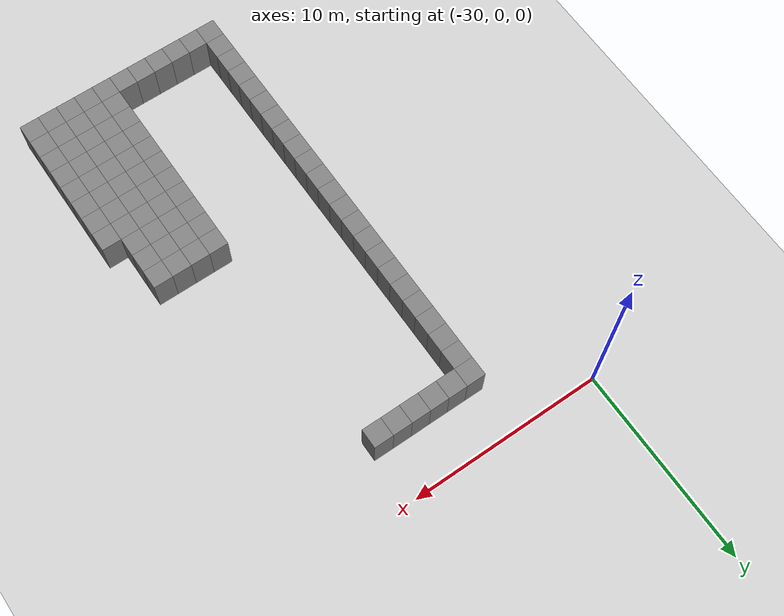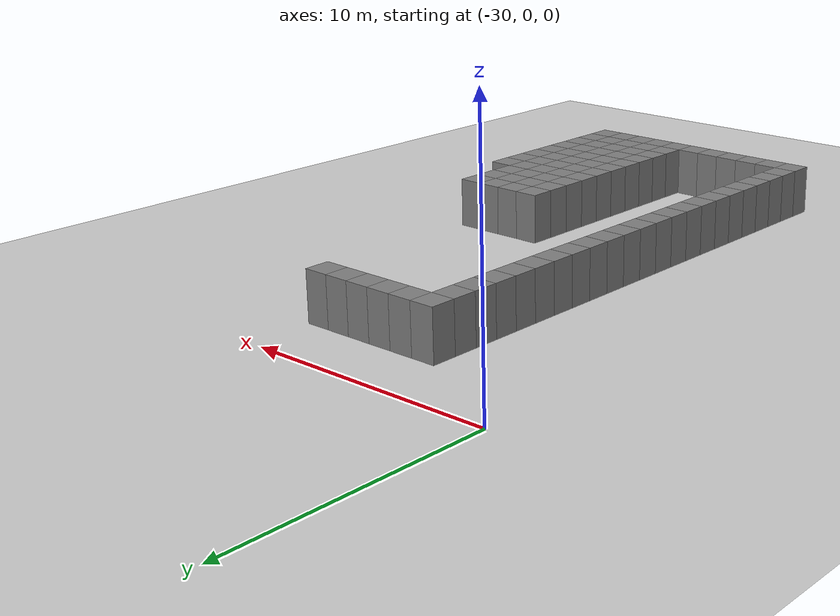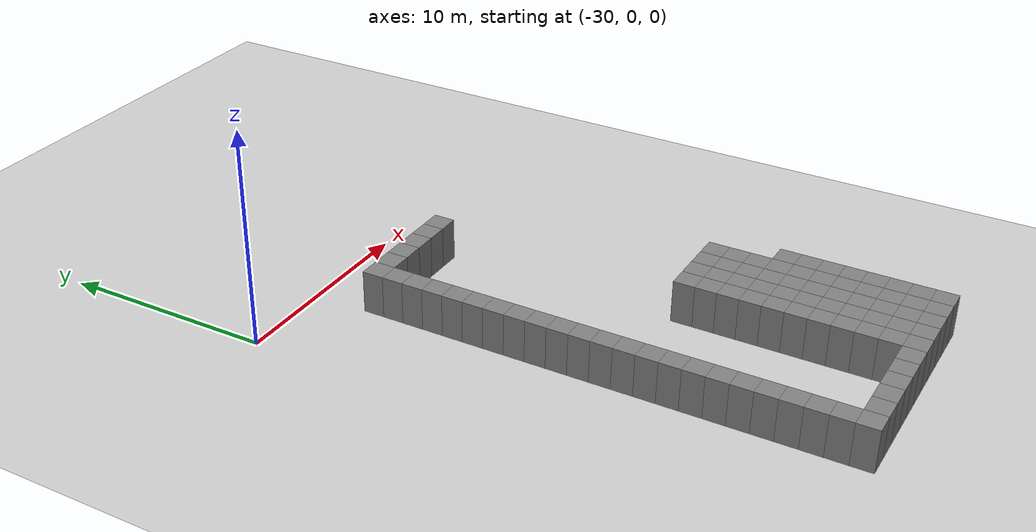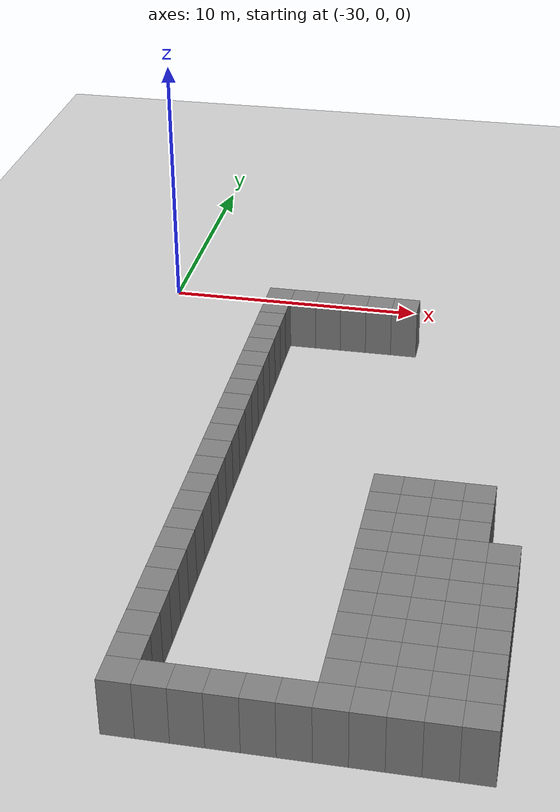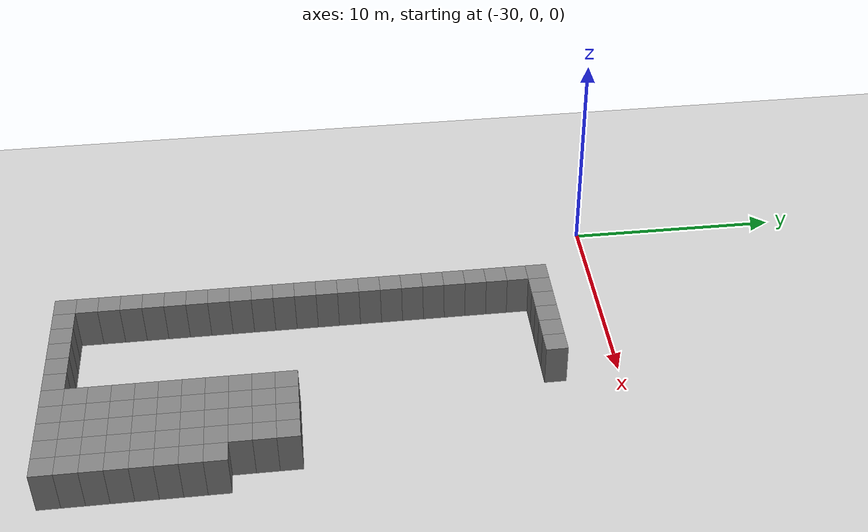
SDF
<sdf version="1.9">
 <world name="grid_world">
  <model name="ground_plane">
   <static>true</static>
   <link name="link">
    <collision name="collision">
     <geometry><plane><normal>0 0 1</normal><size>100 100</size></plane></geometry>
    </collision>
    <visual name="visual">
     <geometry><plane><normal>0 0 1</normal><size>100 100</size></plane></geometry>
     <material>
      <ambient>0.8 0.8 0.8 1</ambient>
      <diffuse>0.8 0.8 0.8 1</diffuse>
      <specular>0.8 0.8 0.8 1</specular>
     </material>
    </visual>
   </link>
  </model>
  <model name="wall_0_0">
   <static>true</static>
   <pose>-25 -25 1 0 0 0</pose>
   <link name="link">
    <collision name="collision"><geometry><box><size>1 1 2</size></box></geometry></collision>
    <visual name="visual">
     <geometry><box><size>1 1 2</size></box></geometry>
     <material>
      <ambient>0.5 0.5 0.5 1</ambient>
      <diffuse>0.5 0.5 0.5 1</diffuse>
      <specular>0.5 0.5 0.5 1</specular>
     </material>
    </visual>
   </link>
  </model>
  <model name="wall_0_1">
   <static>true</static>
   <pose>-24 -25 1 0 0 0</pose>
   <link name="link">
    <collision name="collision"><geometry><box><size>1 1 2</size></box></geometry></collision>
    <visual name="visual">
     <geometry><box><size>1 1 2</size></box></geometry>
     <material>
      <ambient>0.5 0.5 0.5 1</ambient>
      <diffuse>0.5 0.5 0.5 1</diffuse>
      <specular>0.5 0.5 0.5 1</specular>
     </material>
    </visual>
   </link>
  </model>
  <model name="wall_0_2">
   <static>true</static>
   <pose>-23 -25 1 0 0 0</pose>
   <link name="link">
    <collision name="collision"><geometry><box><size>1 1 2</size></box></geometry></collision>
    <visual name="visual">
     <geometry><box><size>1 1 2</size></box></geometry>
     <material>
      <ambient>0.5 0.5 0.5 1</ambient>
      <diffuse>0.5 0.5 0.5 1</diffuse>
      <specular>0.5 0.5 0.5 1</specular>
     </material>
    </visual>
   </link>
  </model>
  <model name="wall_0_3">
   <static>true</static>
   <pose>-22 -25 1 0 0 0</pose>
   <link name="link">
    <collision name="collision"><geometry><box><size>1 1 2</size></box></geometry></collision>
    <visual name="visual">
     <geometry><box><size>1 1 2</size></box></geometry>
     <material>
      <ambient>0.5 0.5 0.5 1</ambient>
      <diffuse>0.5 0.5 0.5 1</diffuse>
      <specular>0.5 0.5 0.5 1</specular>
     </material>
    </visual>
   </link>
  </model>
  <model name="wall_0_4">
   <static>true</static>
   <pose>-21 -25 1 0 0 0</pose>
   <link name="link">
    <collision name="collision"><geometry><box><size>1 1 2</size></box></geometry></collision>
    <visual name="visual">
     <geometry><box><size>1 1 2</size></box></geometry>
     <material>
      <ambient>0.5 0.5 0.5 1</ambient>
      <diffuse>0.5 0.5 0.5 1</diffuse>
      <specular>0.5 0.5 0.5 1</specular>
     </material>
    </visual>
   </link>
  </model>
  <model name="wall_0_5">
   <static>true</static>
   <pose>-20 -25 1 0 0 0</pose>
   <link name="link">
    <collision name="collision"><geometry><box><size>1 1 2</size></box></geometry></collision>
    <visual name="visual">
     <geometry><box><size>1 1 2</size></box></geometry>
     <material>
      <ambient>0.5 0.5 0.5 1</ambient>
      <diffuse>0.5 0.5 0.5 1</diffuse>
      <specular>0.5 0.5 0.5 1</specular>
     </material>
    </visual>
   </link>
  </model>
  <model name="wall_0_6">
   <static>true</static>
   <pose>-19 -25 1 0 0 0</pose>
   <link name="link">
    <collision name="collision"><geometry><box><size>1 1 2</size></box></geometry></collision>
    <visual name="visual">
     <geometry><box><size>1 1 2</size></box></geometry>
     <material>
      <ambient>0.5 0.5 0.5 1</ambient>
      <diffuse>0.5 0.5 0.5 1</diffuse>
      <specular>0.5 0.5 0.5 1</specular>
     </material>
    </visual>
   </link>
  </model>
  <model name="wall_0_7">
   <static>true</static>
   <pose>-18 -25 1 0 0 0</pose>
   <link name="link">
    <collision name="collision"><geometry><box><size>1 1 2</size></box></geometry></collision>
    <visual name="visual">
     <geometry><box><size>1 1 2</size></box></geometry>
     <material>
      <ambient>0.5 0.5 0.5 1</ambient>
      <diffuse>0.5 0.5 0.5 1</diffuse>
      <specular>0.5 0.5 0.5 1</specular>
     </material>
    </visual>
   </link>
  </model>
  <model name="wall_0_8">
   <static>true</static>
   <pose>-17 -25 1 0 0 0</pose>
   <link name="link">
    <collision name="collision"><geometry><box><size>1 1 2</size></box></geometry></collision>
    <visual name="visual">
     <geometry><box><size>1 1 2</size></box></geometry>
     <material>
      <ambient>0.5 0.5 0.5 1</ambient>
      <diffuse>0.5 0.5 0.5 1</diffuse>
      <specular>0.5 0.5 0.5 1</specular>
     </material>
    </visual>
   </link>
  </model>
  <model name="wall_0_9">
   <static>true</static>
   <pose>-16 -25 1 0 0 0</pose>
   <link name="link">
    <collision name="collision"><geometry><box><size>1 1 2</size></box></geometry></collision>
    <visual name="visual">
     <geometry><box><size>1 1 2</size></box></geometry>
     <material>
      <ambient>0.5 0.5 0.5 1</ambient>
      <diffuse>0.5 0.5 0.5 1</diffuse>
      <specular>0.5 0.5 0.5 1</specular>
     </material>
    </visual>
   </link>
  </model>
  <model name="wall_0_10">
   <static>true</static>
   <pose>-15 -25 1 0 0 0</pose>
   <link name="link">
    <collision name="collision"><geometry><box><size>1 1 2</size></box></geometry></collision>
    <visual name="visual">
     <geometry><box><size>1 1 2</size></box></geometry>
     <material>
      <ambient>0.5 0.5 0.5 1</ambient>
      <diffuse>0.5 0.5 0.5 1</diffuse>
      <specular>0.5 0.5 0.5 1</specular>
     </material>
    </visual>
   </link>
  </model>
  <model name="wall_1_0">
   <static>true</static>
   <pose>-25 -24 1 0 0 0</pose>
   <link name="link">
    <collision name="collision"><geometry><box><size>1 1 2</size></box></geometry></collision>
    <visual name="visual">
     <geometry><box><size>1 1 2</size></box></geometry>
     <material>
      <ambient>0.5 0.5 0.5 1</ambient>
      <diffuse>0.5 0.5 0.5 1</diffuse>
      <specular>0.5 0.5 0.5 1</specular>
     </material>
    </visual>
   </link>
  </model>
  <model name="wall_1_6">
   <static>true</static>
   <pose>-19 -24 1 0 0 0</pose>
   <link name="link">
    <collision name="collision"><geometry><box><size>1 1 2</size></box></geometry></collision>
    <visual name="visual">
     <geometry><box><size>1 1 2</size></box></geometry>
     <material>
      <ambient>0.5 0.5 0.5 1</ambient>
      <diffuse>0.5 0.5 0.5 1</diffuse>
      <specular>0.5 0.5 0.5 1</specular>
     </material>
    </visual>
   </link>
  </model>
  <model name="wall_1_7">
   <static>true</static>
   <pose>-18 -24 1 0 0 0</pose>
   <link name="link">
    <collision name="collision"><geometry><box><size>1 1 2</size></box></geometry></collision>
    <visual name="visual">
     <geometry><box><size>1 1 2</size></box></geometry>
     <material>
      <ambient>0.5 0.5 0.5 1</ambient>
      <diffuse>0.5 0.5 0.5 1</diffuse>
      <specular>0.5 0.5 0.5 1</specular>
     </material>
    </visual>
   </link>
  </model>
  <model name="wall_1_8">
   <static>true</static>
   <pose>-17 -24 1 0 0 0</pose>
   <link name="link">
    <collision name="collision"><geometry><box><size>1 1 2</size></box></geometry></collision>
    <visual name="visual">
     <geometry><box><size>1 1 2</size></box></geometry>
     <material>
      <ambient>0.5 0.5 0.5 1</ambient>
      <diffuse>0.5 0.5 0.5 1</diffuse>
      <specular>0.5 0.5 0.5 1</specular>
     </material>
    </visual>
   </link>
  </model>
  <model name="wall_1_9">
   <static>true</static>
   <pose>-16 -24 1 0 0 0</pose>
   <link name="link">
    <collision name="collision"><geometry><box><size>1 1 2</size></box></geometry></collision>
    <visual name="visual">
     <geometry><box><size>1 1 2</size></box></geometry>
     <material>
      <ambient>0.5 0.5 0.5 1</ambient>
      <diffuse>0.5 0.5 0.5 1</diffuse>
      <specular>0.5 0.5 0.5 1</specular>
     </material>
    </visual>
   </link>
  </model>
  <model name="wall_1_10">
   <static>true</static>
   <pose>-15 -24 1 0 0 0</pose>
   <link name="link">
    <collision name="collision"><geometry><box><size>1 1 2</size></box></geometry></collision>
    <visual name="visual">
     <geometry><box><size>1 1 2</size></box></geometry>
     <material>
      <ambient>0.5 0.5 0.5 1</ambient>
      <diffuse>0.5 0.5 0.5 1</diffuse>
      <specular>0.5 0.5 0.5 1</specular>
     </material>
    </visual>
   </link>
  </model>
  <model name="wall_2_0">
   <static>true</static>
   <pose>-25 -23 1 0 0 0</pose>
   <link name="link">
    <collision name="collision"><geometry><box><size>1 1 2</size></box></geometry></collision>
    <visual name="visual">
     <geometry><box><size>1 1 2</size></box></geometry>
     <material>
      <ambient>0.5 0.5 0.5 1</ambient>
      <diffuse>0.5 0.5 0.5 1</diffuse>
      <specular>0.5 0.5 0.5 1</specular>
     </material>
    </visual>
   </link>
  </model>
  <model name="wall_2_6">
   <static>true</static>
   <pose>-19 -23 1 0 0 0</pose>
   <link name="link">
    <collision name="collision"><geometry><box><size>1 1 2</size></box></geometry></collision>
    <visual name="visual">
     <geometry><box><size>1 1 2</size></box></geometry>
     <material>
      <ambient>0.5 0.5 0.5 1</ambient>
      <diffuse>0.5 0.5 0.5 1</diffuse>
      <specular>0.5 0.5 0.5 1</specular>
     </material>
    </visual>
   </link>
  </model>
  <model name="wall_2_7">
   <static>true</static>
   <pose>-18 -23 1 0 0 0</pose>
   <link name="link">
    <collision name="collision"><geometry><box><size>1 1 2</size></box></geometry></collision>
    <visual name="visual">
     <geometry><box><size>1 1 2</size></box></geometry>
     <material>
      <ambient>0.5 0.5 0.5 1</ambient>
      <diffuse>0.5 0.5 0.5 1</diffuse>
      <specular>0.5 0.5 0.5 1</specular>
     </material>
    </visual>
   </link>
  </model>
  <model name="wall_2_8">
   <static>true</static>
   <pose>-17 -23 1 0 0 0</pose>
   <link name="link">
    <collision name="collision"><geometry><box><size>1 1 2</size></box></geometry></collision>
    <visual name="visual">
     <geometry><box><size>1 1 2</size></box></geometry>
     <material>
      <ambient>0.5 0.5 0.5 1</ambient>
      <diffuse>0.5 0.5 0.5 1</diffuse>
      <specular>0.5 0.5 0.5 1</specular>
     </material>
    </visual>
   </link>
  </model>
  <model name="wall_2_9">
   <static>true</static>
   <pose>-16 -23 1 0 0 0</pose>
   <link name="link">
    <collision name="collision"><geometry><box><size>1 1 2</size></box></geometry></collision>
    <visual name="visual">
     <geometry><box><size>1 1 2</size></box></geometry>
     <material>
      <ambient>0.5 0.5 0.5 1</ambient>
      <diffuse>0.5 0.5 0.5 1</diffuse>
      <specular>0.5 0.5 0.5 1</specular>
     </material>
    </visual>
   </link>
  </model>
  <model name="wall_2_10">
   <static>true</static>
   <pose>-15 -23 1 0 0 0</pose>
   <link name="link">
    <collision name="collision"><geometry><box><size>1 1 2</size></box></geometry></collision>
    <visual name="visual">
     <geometry><box><size>1 1 2</size></box></geometry>
     <material>
      <ambient>0.5 0.5 0.5 1</ambient>
      <diffuse>0.5 0.5 0.5 1</diffuse>
      <specular>0.5 0.5 0.5 1</specular>
     </material>
    </visual>
   </link>
  </model>
  <model name="wall_3_0">
   <static>true</static>
   <pose>-25 -22 1 0 0 0</pose>
   <link name="link">
    <collision name="collision"><geometry><box><size>1 1 2</size></box></geometry></collision>
    <visual name="visual">
     <geometry><box><size>1 1 2</size></box></geometry>
     <material>
      <ambient>0.5 0.5 0.5 1</ambient>
      <diffuse>0.5 0.5 0.5 1</diffuse>
      <specular>0.5 0.5 0.5 1</specular>
     </material>
    </visual>
   </link>
  </model>
  <model name="wall_3_6">
   <static>true</static>
   <pose>-19 -22 1 0 0 0</pose>
   <link name="link">
    <collision name="collision"><geometry><box><size>1 1 2</size></box></geometry></collision>
    <visual name="visual">
     <geometry><box><size>1 1 2</size></box></geometry>
     <material>
      <ambient>0.5 0.5 0.5 1</ambient>
      <diffuse>0.5 0.5 0.5 1</diffuse>
      <specular>0.5 0.5 0.5 1</specular>
     </material>
    </visual>
   </link>
  </model>
  <model name="wall_3_7">
   <static>true</static>
   <pose>-18 -22 1 0 0 0</pose>
   <link name="link">
    <collision name="collision"><geometry><box><size>1 1 2</size></box></geometry></collision>
    <visual name="visual">
     <geometry><box><size>1 1 2</size></box></geometry>
     <material>
      <ambient>0.5 0.5 0.5 1</ambient>
      <diffuse>0.5 0.5 0.5 1</diffuse>
      <specular>0.5 0.5 0.5 1</specular>
     </material>
    </visual>
   </link>
  </model>
  <model name="wall_3_8">
   <static>true</static>
   <pose>-17 -22 1 0 0 0</pose>
   <link name="link">
    <collision name="collision"><geometry><box><size>1 1 2</size></box></geometry></collision>
    <visual name="visual">
     <geometry><box><size>1 1 2</size></box></geometry>
     <material>
      <ambient>0.5 0.5 0.5 1</ambient>
      <diffuse>0.5 0.5 0.5 1</diffuse>
      <specular>0.5 0.5 0.5 1</specular>
     </material>
    </visual>
   </link>
  </model>
  <model name="wall_3_9">
   <static>true</static>
   <pose>-16 -22 1 0 0 0</pose>
   <link name="link">
    <collision name="collision"><geometry><box><size>1 1 2</size></box></geometry></collision>
    <visual name="visual">
     <geometry><box><size>1 1 2</size></box></geometry>
     <material>
      <ambient>0.5 0.5 0.5 1</ambient>
      <diffuse>0.5 0.5 0.5 1</diffuse>
      <specular>0.5 0.5 0.5 1</specular>
     </material>
    </visual>
   </link>
  </model>
  <model name="wall_3_10">
   <static>true</static>
   <pose>-15 -22 1 0 0 0</pose>
   <link name="link">
    <collision name="collision"><geometry><box><size>1 1 2</size></box></geometry></collision>
    <visual name="visual">
     <geometry><box><size>1 1 2</size></box></geometry>
     <material>
      <ambient>0.5 0.5 0.5 1</ambient>
      <diffuse>0.5 0.5 0.5 1</diffuse>
      <specular>0.5 0.5 0.5 1</specular>
     </material>
    </visual>
   </link>
  </model>
  <model name="wall_4_0">
   <static>true</static>
   <pose>-25 -21 1 0 0 0</pose>
   <link name="link">
    <collision name="collision"><geometry><box><size>1 1 2</size></box></geometry></collision>
    <visual name="visual">
     <geometry><box><size>1 1 2</size></box></geometry>
     <material>
      <ambient>0.5 0.5 0.5 1</ambient>
      <diffuse>0.5 0.5 0.5 1</diffuse>
      <specular>0.5 0.5 0.5 1</specular>
     </material>
    </visual>
   </link>
  </model>
  <model name="wall_4_6">
   <static>true</static>
   <pose>-19 -21 1 0 0 0</pose>
   <link name="link">
    <collision name="collision"><geometry><box><size>1 1 2</size></box></geometry></collision>
    <visual name="visual">
     <geometry><box><size>1 1 2</size></box></geometry>
     <material>
      <ambient>0.5 0.5 0.5 1</ambient>
      <diffuse>0.5 0.5 0.5 1</diffuse>
      <specular>0.5 0.5 0.5 1</specular>
     </material>
    </visual>
   </link>
  </model>
  <model name="wall_4_7">
   <static>true</static>
   <pose>-18 -21 1 0 0 0</pose>
   <link name="link">
    <collision name="collision"><geometry><box><size>1 1 2</size></box></geometry></collision>
    <visual name="visual">
     <geometry><box><size>1 1 2</size></box></geometry>
     <material>
      <ambient>0.5 0.5 0.5 1</ambient>
      <diffuse>0.5 0.5 0.5 1</diffuse>
      <specular>0.5 0.5 0.5 1</specular>
     </material>
    </visual>
   </link>
  </model>
  <model name="wall_4_8">
   <static>true</static>
   <pose>-17 -21 1 0 0 0</pose>
   <link name="link">
    <collision name="collision"><geometry><box><size>1 1 2</size></box></geometry></collision>
    <visual name="visual">
     <geometry><box><size>1 1 2</size></box></geometry>
     <material>
      <ambient>0.5 0.5 0.5 1</ambient>
      <diffuse>0.5 0.5 0.5 1</diffuse>
      <specular>0.5 0.5 0.5 1</specular>
     </material>
    </visual>
   </link>
  </model>
  <model name="wall_4_9">
   <static>true</static>
   <pose>-16 -21 1 0 0 0</pose>
   <link name="link">
    <collision name="collision"><geometry><box><size>1 1 2</size></box></geometry></collision>
    <visual name="visual">
     <geometry><box><size>1 1 2</size></box></geometry>
     <material>
      <ambient>0.5 0.5 0.5 1</ambient>
      <diffuse>0.5 0.5 0.5 1</diffuse>
      <specular>0.5 0.5 0.5 1</specular>
     </material>
    </visual>
   </link>
  </model>
  <model name="wall_4_10">
   <static>true</static>
   <pose>-15 -21 1 0 0 0</pose>
   <link name="link">
    <collision name="collision"><geometry><box><size>1 1 2</size></box></geometry></collision>
    <visual name="visual">
     <geometry><box><size>1 1 2</size></box></geometry>
     <material>
      <ambient>0.5 0.5 0.5 1</ambient>
      <diffuse>0.5 0.5 0.5 1</diffuse>
      <specular>0.5 0.5 0.5 1</specular>
     </material>
    </visual>
   </link>
  </model>
  <model name="wall_5_0">
   <static>true</static>
   <pose>-25 -20 1 0 0 0</pose>
   <link name="link">
    <collision name="collision"><geometry><box><size>1 1 2</size></box></geometry></collision>
    <visual name="visual">
     <geometry><box><size>1 1 2</size></box></geometry>
     <material>
      <ambient>0.5 0.5 0.5 1</ambient>
      <diffuse>0.5 0.5 0.5 1</diffuse>
      <specular>0.5 0.5 0.5 1</specular>
     </material>
    </visual>
   </link>
  </model>
  <model name="wall_5_6">
   <static>true</static>
   <pose>-19 -20 1 0 0 0</pose>
   <link name="link">
    <collision name="collision"><geometry><box><size>1 1 2</size></box></geometry></collision>
    <visual name="visual">
     <geometry><box><size>1 1 2</size></box></geometry>
     <material>
      <ambient>0.5 0.5 0.5 1</ambient>
      <diffuse>0.5 0.5 0.5 1</diffuse>
      <specular>0.5 0.5 0.5 1</specular>
     </material>
    </visual>
   </link>
  </model>
  <model name="wall_5_7">
   <static>true</static>
   <pose>-18 -20 1 0 0 0</pose>
   <link name="link">
    <collision name="collision"><geometry><box><size>1 1 2</size></box></geometry></collision>
    <visual name="visual">
     <geometry><box><size>1 1 2</size></box></geometry>
     <material>
      <ambient>0.5 0.5 0.5 1</ambient>
      <diffuse>0.5 0.5 0.5 1</diffuse>
      <specular>0.5 0.5 0.5 1</specular>
     </material>
    </visual>
   </link>
  </model>
  <model name="wall_5_8">
   <static>true</static>
   <pose>-17 -20 1 0 0 0</pose>
   <link name="link">
    <collision name="collision"><geometry><box><size>1 1 2</size></box></geometry></collision>
    <visual name="visual">
     <geometry><box><size>1 1 2</size></box></geometry>
     <material>
      <ambient>0.5 0.5 0.5 1</ambient>
      <diffuse>0.5 0.5 0.5 1</diffuse>
      <specular>0.5 0.5 0.5 1</specular>
     </material>
    </visual>
   </link>
  </model>
  <model name="wall_5_9">
   <static>true</static>
   <pose>-16 -20 1 0 0 0</pose>
   <link name="link">
    <collision name="collision"><geometry><box><size>1 1 2</size></box></geometry></collision>
    <visual name="visual">
     <geometry><box><size>1 1 2</size></box></geometry>
     <material>
      <ambient>0.5 0.5 0.5 1</ambient>
      <diffuse>0.5 0.5 0.5 1</diffuse>
      <specular>0.5 0.5 0.5 1</specular>
     </material>
    </visual>
   </link>
  </model>
  <model name="wall_5_10">
   <static>true</static>
   <pose>-15 -20 1 0 0 0</pose>
   <link name="link">
    <collision name="collision"><geometry><box><size>1 1 2</size></box></geometry></collision>
    <visual name="visual">
     <geometry><box><size>1 1 2</size></box></geometry>
     <material>
      <ambient>0.5 0.5 0.5 1</ambient>
      <diffuse>0.5 0.5 0.5 1</diffuse>
      <specular>0.5 0.5 0.5 1</specular>
     </material>
    </visual>
   </link>
  </model>
  <model name="wall_6_0">
   <static>true</static>
   <pose>-25 -19 1 0 0 0</pose>
   <link name="link">
    <collision name="collision"><geometry><box><size>1 1 2</size></box></geometry></collision>
    <visual name="visual">
     <geometry><box><size>1 1 2</size></box></geometry>
     <material>
      <ambient>0.5 0.5 0.5 1</ambient>
      <diffuse>0.5 0.5 0.5 1</diffuse>
      <specular>0.5 0.5 0.5 1</specular>
     </material>
    </visual>
   </link>
  </model>
  <model name="wall_6_6">
   <static>true</static>
   <pose>-19 -19 1 0 0 0</pose>
   <link name="link">
    <collision name="collision"><geometry><box><size>1 1 2</size></box></geometry></collision>
    <visual name="visual">
     <geometry><box><size>1 1 2</size></box></geometry>
     <material>
      <ambient>0.5 0.5 0.5 1</ambient>
      <diffuse>0.5 0.5 0.5 1</diffuse>
      <specular>0.5 0.5 0.5 1</specular>
     </material>
    </visual>
   </link>
  </model>
  <model name="wall_6_7">
   <static>true</static>
   <pose>-18 -19 1 0 0 0</pose>
   <link name="link">
    <collision name="collision"><geometry><box><size>1 1 2</size></box></geometry></collision>
    <visual name="visual">
     <geometry><box><size>1 1 2</size></box></geometry>
     <material>
      <ambient>0.5 0.5 0.5 1</ambient>
      <diffuse>0.5 0.5 0.5 1</diffuse>
      <specular>0.5 0.5 0.5 1</specular>
     </material>
    </visual>
   </link>
  </model>
  <model name="wall_6_8">
   <static>true</static>
   <pose>-17 -19 1 0 0 0</pose>
   <link name="link">
    <collision name="collision"><geometry><box><size>1 1 2</size></box></geometry></collision>
    <visual name="visual">
     <geometry><box><size>1 1 2</size></box></geometry>
     <material>
      <ambient>0.5 0.5 0.5 1</ambient>
      <diffuse>0.5 0.5 0.5 1</diffuse>
      <specular>0.5 0.5 0.5 1</specular>
     </material>
    </visual>
   </link>
  </model>
  <model name="wall_6_9">
   <static>true</static>
   <pose>-16 -19 1 0 0 0</pose>
   <link name="link">
    <collision name="collision"><geometry><box><size>1 1 2</size></box></geometry></collision>
    <visual name="visual">
     <geometry><box><size>1 1 2</size></box></geometry>
     <material>
      <ambient>0.5 0.5 0.5 1</ambient>
      <diffuse>0.5 0.5 0.5 1</diffuse>
      <specular>0.5 0.5 0.5 1</specular>
     </material>
    </visual>
   </link>
  </model>
  <model name="wall_6_10">
   <static>true</static>
   <pose>-15 -19 1 0 0 0</pose>
   <link name="link">
    <collision name="collision"><geometry><box><size>1 1 2</size></box></geometry></collision>
    <visual name="visual">
     <geometry><box><size>1 1 2</size></box></geometry>
     <material>
      <ambient>0.5 0.5 0.5 1</ambient>
      <diffuse>0.5 0.5 0.5 1</diffuse>
      <specular>0.5 0.5 0.5 1</specular>
     </material>
    </visual>
   </link>
  </model>
  <model name="wall_7_0">
   <static>true</static>
   <pose>-25 -18 1 0 0 0</pose>
   <link name="link">
    <collision name="collision"><geometry><box><size>1 1 2</size></box></geometry></collision>
    <visual name="visual">
     <geometry><box><size>1 1 2</size></box></geometry>
     <material>
      <ambient>0.5 0.5 0.5 1</ambient>
      <diffuse>0.5 0.5 0.5 1</diffuse>
      <specular>0.5 0.5 0.5 1</specular>
     </material>
    </visual>
   </link>
  </model>
  <model name="wall_7_6">
   <static>true</static>
   <pose>-19 -18 1 0 0 0</pose>
   <link name="link">
    <collision name="collision"><geometry><box><size>1 1 2</size></box></geometry></collision>
    <visual name="visual">
     <geometry><box><size>1 1 2</size></box></geometry>
     <material>
      <ambient>0.5 0.5 0.5 1</ambient>
      <diffuse>0.5 0.5 0.5 1</diffuse>
      <specular>0.5 0.5 0.5 1</specular>
     </material>
    </visual>
   </link>
  </model>
  <model name="wall_7_7">
   <static>true</static>
   <pose>-18 -18 1 0 0 0</pose>
   <link name="link">
    <collision name="collision"><geometry><box><size>1 1 2</size></box></geometry></collision>
    <visual name="visual">
     <geometry><box><size>1 1 2</size></box></geometry>
     <material>
      <ambient>0.5 0.5 0.5 1</ambient>
      <diffuse>0.5 0.5 0.5 1</diffuse>
      <specular>0.5 0.5 0.5 1</specular>
     </material>
    </visual>
   </link>
  </model>
  <model name="wall_7_8">
   <static>true</static>
   <pose>-17 -18 1 0 0 0</pose>
   <link name="link">
    <collision name="collision"><geometry><box><size>1 1 2</size></box></geometry></collision>
    <visual name="visual">
     <geometry><box><size>1 1 2</size></box></geometry>
     <material>
      <ambient>0.5 0.5 0.5 1</ambient>
      <diffuse>0.5 0.5 0.5 1</diffuse>
      <specular>0.5 0.5 0.5 1</specular>
     </material>
    </visual>
   </link>
  </model>
  <model name="wall_7_9">
   <static>true</static>
   <pose>-16 -18 1 0 0 0</pose>
   <link name="link">
    <collision name="collision"><geometry><box><size>1 1 2</size></box></geometry></collision>
    <visual name="visual">
     <geometry><box><size>1 1 2</size></box></geometry>
     <material>
      <ambient>0.5 0.5 0.5 1</ambient>
      <diffuse>0.5 0.5 0.5 1</diffuse>
      <specular>0.5 0.5 0.5 1</specular>
     </material>
    </visual>
   </link>
  </model>
  <model name="wall_7_10">
   <static>true</static>
   <pose>-15 -18 1 0 0 0</pose>
   <link name="link">
    <collision name="collision"><geometry><box><size>1 1 2</size></box></geometry></collision>
    <visual name="visual">
     <geometry><box><size>1 1 2</size></box></geometry>
     <material>
      <ambient>0.5 0.5 0.5 1</ambient>
      <diffuse>0.5 0.5 0.5 1</diffuse>
      <specular>0.5 0.5 0.5 1</specular>
     </material>
    </visual>
   </link>
  </model>
  <model name="wall_8_0">
   <static>true</static>
   <pose>-25 -17 1 0 0 0</pose>
   <link name="link">
    <collision name="collision"><geometry><box><size>1 1 2</size></box></geometry></collision>
    <visual name="visual">
     <geometry><box><size>1 1 2</size></box></geometry>
     <material>
      <ambient>0.5 0.5 0.5 1</ambient>
      <diffuse>0.5 0.5 0.5 1</diffuse>
      <specular>0.5 0.5 0.5 1</specular>
     </material>
    </visual>
   </link>
  </model>
  <model name="wall_8_6">
   <static>true</static>
   <pose>-19 -17 1 0 0 0</pose>
   <link name="link">
    <collision name="collision"><geometry><box><size>1 1 2</size></box></geometry></collision>
    <visual name="visual">
     <geometry><box><size>1 1 2</size></box></geometry>
     <material>
      <ambient>0.5 0.5 0.5 1</ambient>
      <diffuse>0.5 0.5 0.5 1</diffuse>
      <specular>0.5 0.5 0.5 1</specular>
     </material>
    </visual>
   </link>
  </model>
  <model name="wall_8_7">
   <static>true</static>
   <pose>-18 -17 1 0 0 0</pose>
   <link name="link">
    <collision name="collision"><geometry><box><size>1 1 2</size></box></geometry></collision>
    <visual name="visual">
     <geometry><box><size>1 1 2</size></box></geometry>
     <material>
      <ambient>0.5 0.5 0.5 1</ambient>
      <diffuse>0.5 0.5 0.5 1</diffuse>
      <specular>0.5 0.5 0.5 1</specular>
     </material>
    </visual>
   </link>
  </model>
  <model name="wall_8_8">
   <static>true</static>
   <pose>-17 -17 1 0 0 0</pose>
   <link name="link">
    <collision name="collision"><geometry><box><size>1 1 2</size></box></geometry></collision>
    <visual name="visual">
     <geometry><box><size>1 1 2</size></box></geometry>
     <material>
      <ambient>0.5 0.5 0.5 1</ambient>
      <diffuse>0.5 0.5 0.5 1</diffuse>
      <specular>0.5 0.5 0.5 1</specular>
     </material>
    </visual>
   </link>
  </model>
  <model name="wall_8_9">
   <static>true</static>
   <pose>-16 -17 1 0 0 0</pose>
   <link name="link">
    <collision name="collision"><geometry><box><size>1 1 2</size></box></geometry></collision>
    <visual name="visual">
     <geometry><box><size>1 1 2</size></box></geometry>
     <material>
      <ambient>0.5 0.5 0.5 1</ambient>
      <diffuse>0.5 0.5 0.5 1</diffuse>
      <specular>0.5 0.5 0.5 1</specular>
     </material>
    </visual>
   </link>
  </model>
  <model name="wall_9_0">
   <static>true</static>
   <pose>-25 -16 1 0 0 0</pose>
   <link name="link">
    <collision name="collision"><geometry><box><size>1 1 2</size></box></geometry></collision>
    <visual name="visual">
     <geometry><box><size>1 1 2</size></box></geometry>
     <material>
      <ambient>0.5 0.5 0.5 1</ambient>
      <diffuse>0.5 0.5 0.5 1</diffuse>
      <specular>0.5 0.5 0.5 1</specular>
     </material>
    </visual>
   </link>
  </model>
  <model name="wall_9_6">
   <static>true</static>
   <pose>-19 -16 1 0 0 0</pose>
   <link name="link">
    <collision name="collision"><geometry><box><size>1 1 2</size></box></geometry></collision>
    <visual name="visual">
     <geometry><box><size>1 1 2</size></box></geometry>
     <material>
      <ambient>0.5 0.5 0.5 1</ambient>
      <diffuse>0.5 0.5 0.5 1</diffuse>
      <specular>0.5 0.5 0.5 1</specular>
     </material>
    </visual>
   </link>
  </model>
  <model name="wall_9_7">
   <static>true</static>
   <pose>-18 -16 1 0 0 0</pose>
   <link name="link">
    <collision name="collision"><geometry><box><size>1 1 2</size></box></geometry></collision>
    <visual name="visual">
     <geometry><box><size>1 1 2</size></box></geometry>
     <material>
      <ambient>0.5 0.5 0.5 1</ambient>
      <diffuse>0.5 0.5 0.5 1</diffuse>
      <specular>0.5 0.5 0.5 1</specular>
     </material>
    </visual>
   </link>
  </model>
  <model name="wall_9_8">
   <static>true</static>
   <pose>-17 -16 1 0 0 0</pose>
   <link name="link">
    <collision name="collision"><geometry><box><size>1 1 2</size></box></geometry></collision>
    <visual name="visual">
     <geometry><box><size>1 1 2</size></box></geometry>
     <material>
      <ambient>0.5 0.5 0.5 1</ambient>
      <diffuse>0.5 0.5 0.5 1</diffuse>
      <specular>0.5 0.5 0.5 1</specular>
     </material>
    </visual>
   </link>
  </model>
  <model name="wall_9_9">
   <static>true</static>
   <pose>-16 -16 1 0 0 0</pose>
   <link name="link">
    <collision name="collision"><geometry><box><size>1 1 2</size></box></geometry></collision>
    <visual name="visual">
     <geometry><box><size>1 1 2</size></box></geometry>
     <material>
      <ambient>0.5 0.5 0.5 1</ambient>
      <diffuse>0.5 0.5 0.5 1</diffuse>
      <specular>0.5 0.5 0.5 1</specular>
     </material>
    </visual>
   </link>
  </model>
  <model name="wall_10_0">
   <static>true</static>
   <pose>-25 -15 1 0 0 0</pose>
   <link name="link">
    <collision name="collision"><geometry><box><size>1 1 2</size></box></geometry></collision>
    <visual name="visual">
     <geometry><box><size>1 1 2</size></box></geometry>
     <material>
      <ambient>0.5 0.5 0.5 1</ambient>
      <diffuse>0.5 0.5 0.5 1</diffuse>
      <specular>0.5 0.5 0.5 1</specular>
     </material>
    </visual>
   </link>
  </model>
  <model name="wall_10_6">
   <static>true</static>
   <pose>-19 -15 1 0 0 0</pose>
   <link name="link">
    <collision name="collision"><geometry><box><size>1 1 2</size></box></geometry></collision>
    <visual name="visual">
     <geometry><box><size>1 1 2</size></box></geometry>
     <material>
      <ambient>0.5 0.5 0.5 1</ambient>
      <diffuse>0.5 0.5 0.5 1</diffuse>
      <specular>0.5 0.5 0.5 1</specular>
     </material>
    </visual>
   </link>
  </model>
  <model name="wall_10_7">
   <static>true</static>
   <pose>-18 -15 1 0 0 0</pose>
   <link name="link">
    <collision name="collision"><geometry><box><size>1 1 2</size></box></geometry></collision>
    <visual name="visual">
     <geometry><box><size>1 1 2</size></box></geometry>
     <material>
      <ambient>0.5 0.5 0.5 1</ambient>
      <diffuse>0.5 0.5 0.5 1</diffuse>
      <specular>0.5 0.5 0.5 1</specular>
     </material>
    </visual>
   </link>
  </model>
  <model name="wall_10_8">
   <static>true</static>
   <pose>-17 -15 1 0 0 0</pose>
   <link name="link">
    <collision name="collision"><geometry><box><size>1 1 2</size></box></geometry></collision>
    <visual name="visual">
     <geometry><box><size>1 1 2</size></box></geometry>
     <material>
      <ambient>0.5 0.5 0.5 1</ambient>
      <diffuse>0.5 0.5 0.5 1</diffuse>
      <specular>0.5 0.5 0.5 1</specular>
     </material>
    </visual>
   </link>
  </model>
  <model name="wall_10_9">
   <static>true</static>
   <pose>-16 -15 1 0 0 0</pose>
   <link name="link">
    <collision name="collision"><geometry><box><size>1 1 2</size></box></geometry></collision>
    <visual name="visual">
     <geometry><box><size>1 1 2</size></box></geometry>
     <material>
      <ambient>0.5 0.5 0.5 1</ambient>
      <diffuse>0.5 0.5 0.5 1</diffuse>
      <specular>0.5 0.5 0.5 1</specular>
     </material>
    </visual>
   </link>
  </model>
  <model name="wall_11_0">
   <static>true</static>
   <pose>-25 -14 1 0 0 0</pose>
   <link name="link">
    <collision name="collision"><geometry><box><size>1 1 2</size></box></geometry></collision>
    <visual name="visual">
     <geometry><box><size>1 1 2</size></box></geometry>
     <material>
      <ambient>0.5 0.5 0.5 1</ambient>
      <diffuse>0.5 0.5 0.5 1</diffuse>
      <specular>0.5 0.5 0.5 1</specular>
     </material>
    </visual>
   </link>
  </model>
  <model name="wall_12_0">
   <static>true</static>
   <pose>-25 -13 1 0 0 0</pose>
   <link name="link">
    <collision name="collision"><geometry><box><size>1 1 2</size></box></geometry></collision>
    <visual name="visual">
     <geometry><box><size>1 1 2</size></box></geometry>
     <material>
      <ambient>0.5 0.5 0.5 1</ambient>
      <diffuse>0.5 0.5 0.5 1</diffuse>
      <specular>0.5 0.5 0.5 1</specular>
     </material>
    </visual>
   </link>
  </model>
  <model name="wall_13_0">
   <static>true</static>
   <pose>-25 -12 1 0 0 0</pose>
   <link name="link">
    <collision name="collision"><geometry><box><size>1 1 2</size></box></geometry></collision>
    <visual name="visual">
     <geometry><box><size>1 1 2</size></box></geometry>
     <material>
      <ambient>0.5 0.5 0.5 1</ambient>
      <diffuse>0.5 0.5 0.5 1</diffuse>
      <specular>0.5 0.5 0.5 1</specular>
     </material>
    </visual>
   </link>
  </model>
  <model name="wall_14_0">
   <static>true</static>
   <pose>-25 -11 1 0 0 0</pose>
   <link name="link">
    <collision name="collision"><geometry><box><size>1 1 2</size></box></geometry></collision>
    <visual name="visual">
     <geometry><box><size>1 1 2</size></box></geometry>
     <material>
      <ambient>0.5 0.5 0.5 1</ambient>
      <diffuse>0.5 0.5 0.5 1</diffuse>
      <specular>0.5 0.5 0.5 1</specular>
     </material>
    </visual>
   </link>
  </model>
  <model name="wall_15_0">
   <static>true</static>
   <pose>-25 -10 1 0 0 0</pose>
   <link name="link">
    <collision name="collision"><geometry><box><size>1 1 2</size></box></geometry></collision>
    <visual name="visual">
     <geometry><box><size>1 1 2</size></box></geometry>
     <material>
      <ambient>0.5 0.5 0.5 1</ambient>
      <diffuse>0.5 0.5 0.5 1</diffuse>
      <specular>0.5 0.5 0.5 1</specular>
     </material>
    </visual>
   </link>
  </model>
  <model name="wall_16_0">
   <static>true</static>
   <pose>-25 -9 1 0 0 0</pose>
   <link name="link">
    <collision name="collision"><geometry><box><size>1 1 2</size></box></geometry></collision>
    <visual name="visual">
     <geometry><box><size>1 1 2</size></box></geometry>
     <material>
      <ambient>0.5 0.5 0.5 1</ambient>
      <diffuse>0.5 0.5 0.5 1</diffuse>
      <specular>0.5 0.5 0.5 1</specular>
     </material>
    </visual>
   </link>
  </model>
  <model name="wall_17_0">
   <static>true</static>
   <pose>-25 -8 1 0 0 0</pose>
   <link name="link">
    <collision name="collision"><geometry><box><size>1 1 2</size></box></geometry></collision>
    <visual name="visual">
     <geometry><box><size>1 1 2</size></box></geometry>
     <material>
      <ambient>0.5 0.5 0.5 1</ambient>
      <diffuse>0.5 0.5 0.5 1</diffuse>
      <specular>0.5 0.5 0.5 1</specular>
     </material>
    </visual>
   </link>
  </model>
  <model name="wall_18_0">
   <static>true</static>
   <pose>-25 -7 1 0 0 0</pose>
   <link name="link">
    <collision name="collision"><geometry><box><size>1 1 2</size></box></geometry></collision>
    <visual name="visual">
     <geometry><box><size>1 1 2</size></box></geometry>
     <material>
      <ambient>0.5 0.5 0.5 1</ambient>
      <diffuse>0.5 0.5 0.5 1</diffuse>
      <specular>0.5 0.5 0.5 1</specular>
     </material>
    </visual>
   </link>
  </model>
  <model name="wall_19_0">
   <static>true</static>
   <pose>-25 -6 1 0 0 0</pose>
   <link name="link">
    <collision name="collision"><geometry><box><size>1 1 2</size></box></geometry></collision>
    <visual name="visual">
     <geometry><box><size>1 1 2</size></box></geometry>
     <material>
      <ambient>0.5 0.5 0.5 1</ambient>
      <diffuse>0.5 0.5 0.5 1</diffuse>
      <specular>0.5 0.5 0.5 1</specular>
     </material>
    </visual>
   </link>
  </model>
  <model name="wall_20_0">
   <static>true</static>
   <pose>-25 -5 1 0 0 0</pose>
   <link name="link">
    <collision name="collision"><geometry><box><size>1 1 2</size></box></geometry></collision>
    <visual name="visual">
     <geometry><box><size>1 1 2</size></box></geometry>
     <material>
      <ambient>0.5 0.5 0.5 1</ambient>
      <diffuse>0.5 0.5 0.5 1</diffuse>
      <specular>0.5 0.5 0.5 1</specular>
     </material>
    </visual>
   </link>
  </model>
  <model name="wall_21_0">
   <static>true</static>
   <pose>-25 -4 1 0 0 0</pose>
   <link name="link">
    <collision name="collision"><geometry><box><size>1 1 2</size></box></geometry></collision>
    <visual name="visual">
     <geometry><box><size>1 1 2</size></box></geometry>
     <material>
      <ambient>0.5 0.5 0.5 1</ambient>
      <diffuse>0.5 0.5 0.5 1</diffuse>
      <specular>0.5 0.5 0.5 1</specular>
     </material>
    </visual>
   </link>
  </model>
  <model name="wall_22_0">
   <static>true</static>
   <pose>-25 -3 1 0 0 0</pose>
   <link name="link">
    <collision name="collision"><geometry><box><size>1 1 2</size></box></geometry></collision>
    <visual name="visual">
     <geometry><box><size>1 1 2</size></box></geometry>
     <material>
      <ambient>0.5 0.5 0.5 1</ambient>
      <diffuse>0.5 0.5 0.5 1</diffuse>
      <specular>0.5 0.5 0.5 1</specular>
     </material>
    </visual>
   </link>
  </model>
  <model name="wall_22_1">
   <static>true</static>
   <pose>-24 -3 1 0 0 0</pose>
   <link name="link">
    <collision name="collision"><geometry><box><size>1 1 2</size></box></geometry></collision>
    <visual name="visual">
     <geometry><box><size>1 1 2</size></box></geometry>
     <material>
      <ambient>0.5 0.5 0.5 1</ambient>
      <diffuse>0.5 0.5 0.5 1</diffuse>
      <specular>0.5 0.5 0.5 1</specular>
     </material>
    </visual>
   </link>
  </model>
  <model name="wall_22_2">
   <static>true</static>
   <pose>-23 -3 1 0 0 0</pose>
   <link name="link">
    <collision name="collision"><geometry><box><size>1 1 2</size></box></geometry></collision>
    <visual name="visual">
     <geometry><box><size>1 1 2</size></box></geometry>
     <material>
      <ambient>0.5 0.5 0.5 1</ambient>
      <diffuse>0.5 0.5 0.5 1</diffuse>
      <specular>0.5 0.5 0.5 1</specular>
     </material>
    </visual>
   </link>
  </model>
  <model name="wall_22_3">
   <static>true</static>
   <pose>-22 -3 1 0 0 0</pose>
   <link name="link">
    <collision name="collision"><geometry><box><size>1 1 2</size></box></geometry></collision>
    <visual name="visual">
     <geometry><box><size>1 1 2</size></box></geometry>
     <material>
      <ambient>0.5 0.5 0.5 1</ambient>
      <diffuse>0.5 0.5 0.5 1</diffuse>
      <specular>0.5 0.5 0.5 1</specular>
     </material>
    </visual>
   </link>
  </model>
  <model name="wall_22_4">
   <static>true</static>
   <pose>-21 -3 1 0 0 0</pose>
   <link name="link">
    <collision name="collision"><geometry><box><size>1 1 2</size></box></geometry></collision>
    <visual name="visual">
     <geometry><box><size>1 1 2</size></box></geometry>
     <material>
      <ambient>0.5 0.5 0.5 1</ambient>
      <diffuse>0.5 0.5 0.5 1</diffuse>
      <specular>0.5 0.5 0.5 1</specular>
     </material>
    </visual>
   </link>
  </model>
  <model name="wall_22_5">
   <static>true</static>
   <pose>-20 -3 1 0 0 0</pose>
   <link name="link">
    <collision name="collision"><geometry><box><size>1 1 2</size></box></geometry></collision>
    <visual name="visual">
     <geometry><box><size>1 1 2</size></box></geometry>
     <material>
      <ambient>0.5 0.5 0.5 1</ambient>
      <diffuse>0.5 0.5 0.5 1</diffuse>
      <specular>0.5 0.5 0.5 1</specular>
     </material>
    </visual>
   </link>
  </model>
 </world>
</sdf>
